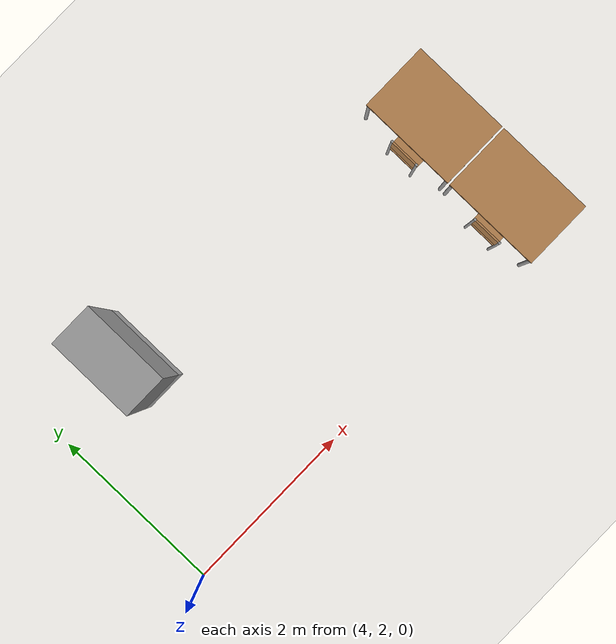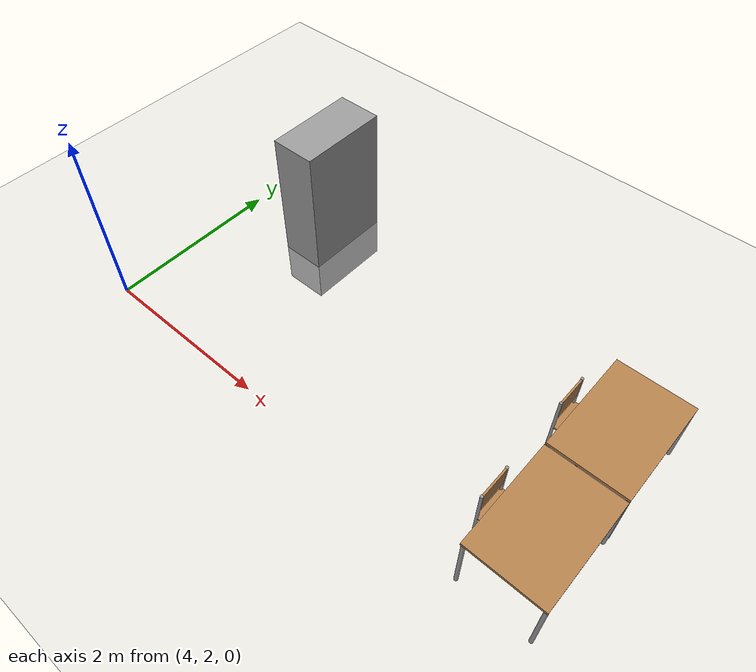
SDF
<sdf version="1.7">
 <world name="default">
  <model name="ground_plane">
   <static>1</static>
   <link name="link">
    <collision name="collision">
     <geometry><plane><normal>0 0 1</normal><size>100 100</size></plane></geometry>
     <surface>
      <contact><collide_bitmask>65535</collide_bitmask></contact>
      <friction><ode><mu>100</mu><mu2>50</mu2></ode></friction>
     </surface>
    </collision>
    <visual name="visual">
     <cast_shadows>0</cast_shadows>
     <geometry><plane><normal>0 0 1</normal><size>100 100</size></plane></geometry>
     <material>
      <script><uri>file://media/materials/scripts/gazebo.material</uri><name>Gazebo/Grey</name></script>
     </material>
    </visual>
   </link>
  </model>
  <model name="table_mod_clone_clone_1_clone">
   <link name="link">
    <inertial>
     <mass>1</mass>
     <inertia><ixx>1</ixx><ixy>0</ixy><ixz>0</ixz><iyy>1</iyy><iyz>0</iyz><izz>1</izz></inertia>
    </inertial>
    <visual name="visual1">
     <pose>0 0 0.87 0 -0 0</pose>
     <geometry><box><size>1.15 0.8 0.03</size></box></geometry>
     <material>
      <script><uri>file://media/materials/scripts/gazebo.material</uri><name>Gazebo/Wood</name></script>
      <shader type="pixel"><normal_map>__default__</normal_map></shader>
      <ambient>1 1 1 1</ambient>
      <diffuse>1 1 1 1</diffuse>
      <specular>0.2 0.2 0.2 1</specular>
      <emissive>0 0 0 1</emissive>
     </material>
    </visual>
    <visual name="back_right_leg">
     <pose>-0.55 -0.38 0.5 0 -0 0</pose>
     <geometry><cylinder><radius>0.02</radius><length>0.75</length></cylinder></geometry>
     <material>
      <script><uri>file://media/materials/scripts/gazebo.material</uri><name>Gazebo/Grey</name></script>
      <shader type="pixel"><normal_map>__default__</normal_map></shader>
      <ambient>0.3 0.3 0.3 1</ambient>
      <diffuse>0.7 0.7 0.7 1</diffuse>
      <specular>0.01 0.01 0.01 1</specular>
      <emissive>0 0 0 1</emissive>
     </material>
    </visual>
    <visual name="front_right_leg">
     <pose>0.55 -0.38 0.5 0 -0 0</pose>
     <geometry><cylinder><radius>0.02</radius><length>0.75</length></cylinder></geometry>
     <material>
      <script><uri>file://media/materials/scripts/gazebo.material</uri><name>Gazebo/Grey</name></script>
      <shader type="pixel"><normal_map>__default__</normal_map></shader>
      <ambient>0.3 0.3 0.3 1</ambient>
      <diffuse>0.7 0.7 0.7 1</diffuse>
      <specular>0.01 0.01 0.01 1</specular>
      <emissive>0 0 0 1</emissive>
     </material>
    </visual>
    <visual name="back_left_leg">
     <pose>-0.55 0.38 0.5 0 -0 0</pose>
     <geometry><cylinder><radius>0.02</radius><length>0.75</length></cylinder></geometry>
     <material>
      <script><uri>file://media/materials/scripts/gazebo.material</uri><name>Gazebo/Grey</name></script>
      <shader type="pixel"><normal_map>__default__</normal_map></shader>
      <ambient>0.3 0.3 0.3 1</ambient>
      <diffuse>0.7 0.7 0.7 1</diffuse>
      <specular>0.01 0.01 0.01 1</specular>
      <emissive>0 0 0 1</emissive>
     </material>
    </visual>
    <visual name="front_left_leg">
     <pose>0.55 0.38 0.5 0 -0 0</pose>
     <geometry><cylinder><radius>0.02</radius><length>0.75</length></cylinder></geometry>
     <material>
      <script><uri>file://media/materials/scripts/gazebo.material</uri><name>Gazebo/Grey</name></script>
      <shader type="pixel"><normal_map>__default__</normal_map></shader>
      <ambient>0.3 0.3 0.3 1</ambient>
      <diffuse>0.7 0.7 0.7 1</diffuse>
      <specular>0.01 0.01 0.01 1</specular>
      <emissive>0 0 0 1</emissive>
     </material>
    </visual>
    <collision name="surface">
     <pose>0 0 0.87 0 -0 0</pose>
     <geometry><box><size>1.15 0.8 0.03</size></box></geometry>
     <surface>
      <friction>
       <ode><mu>0.6</mu><mu2>0.6</mu2><fdir1>0 0 0</fdir1><slip1>0</slip1><slip2>0</slip2></ode>
       <torsional>
        <coefficient>1</coefficient>
        <patch_radius>0</patch_radius>
        <surface_radius>0</surface_radius>
        <use_patch_radius>1</use_patch_radius>
        <ode><slip>0</slip></ode>
       </torsional>
      </friction>
      <bounce><restitution_coefficient>0</restitution_coefficient><threshold>1e+06</threshold></bounce>
      <contact>
       <collide_without_contact>0</collide_without_contact>
       <collide_without_contact_bitmask>1</collide_without_contact_bitmask>
       <collide_bitmask>1</collide_bitmask>
       <ode>
        <soft_cfm>0</soft_cfm>
        <soft_erp>0.2</soft_erp>
        <kp>1e+13</kp>
        <kd>1</kd>
        <max_vel>0.01</max_vel>
        <min_depth>0</min_depth>
       </ode>
       <bullet>
        <split_impulse>1</split_impulse>
        <split_impulse_penetration_threshold>-0.01</split_impulse_penetration_threshold>
        <soft_cfm>0</soft_cfm>
        <soft_erp>0.2</soft_erp>
        <kp>1e+13</kp>
        <kd>1</kd>
       </bullet>
      </contact>
     </surface>
    </collision>
    <collision name="back_right_leg">
     <pose>-0.55 -0.38 0.5 0 -0 0</pose>
     <geometry><cylinder><radius>0.02</radius><length>0.75</length></cylinder></geometry>
     <surface>
      <friction>
       <ode><mu>1</mu><mu2>1</mu2><fdir1>0 0 0</fdir1><slip1>0</slip1><slip2>0</slip2></ode>
       <torsional>
        <coefficient>1</coefficient>
        <patch_radius>0</patch_radius>
        <surface_radius>0</surface_radius>
        <use_patch_radius>1</use_patch_radius>
        <ode><slip>0</slip></ode>
       </torsional>
      </friction>
      <bounce><restitution_coefficient>0</restitution_coefficient><threshold>1e+06</threshold></bounce>
      <contact>
       <collide_without_contact>0</collide_without_contact>
       <collide_without_contact_bitmask>1</collide_without_contact_bitmask>
       <collide_bitmask>1</collide_bitmask>
       <ode>
        <soft_cfm>0</soft_cfm>
        <soft_erp>0.2</soft_erp>
        <kp>1e+13</kp>
        <kd>1</kd>
        <max_vel>0.01</max_vel>
        <min_depth>0</min_depth>
       </ode>
       <bullet>
        <split_impulse>1</split_impulse>
        <split_impulse_penetration_threshold>-0.01</split_impulse_penetration_threshold>
        <soft_cfm>0</soft_cfm>
        <soft_erp>0.2</soft_erp>
        <kp>1e+13</kp>
        <kd>1</kd>
       </bullet>
      </contact>
     </surface>
    </collision>
    <collision name="back_left_leg">
     <pose>-0.55 0.38 0.5 0 -0 0</pose>
     <geometry><cylinder><radius>0.02</radius><length>0.75</length></cylinder></geometry>
     <surface>
      <friction>
       <ode><mu>1</mu><mu2>1</mu2><fdir1>0 0 0</fdir1><slip1>0</slip1><slip2>0</slip2></ode>
       <torsional>
        <coefficient>1</coefficient>
        <patch_radius>0</patch_radius>
        <surface_radius>0</surface_radius>
        <use_patch_radius>1</use_patch_radius>
        <ode><slip>0</slip></ode>
       </torsional>
      </friction>
      <bounce><restitution_coefficient>0</restitution_coefficient><threshold>1e+06</threshold></bounce>
      <contact>
       <collide_without_contact>0</collide_without_contact>
       <collide_without_contact_bitmask>1</collide_without_contact_bitmask>
       <collide_bitmask>1</collide_bitmask>
       <ode>
        <soft_cfm>0</soft_cfm>
        <soft_erp>0.2</soft_erp>
        <kp>1e+13</kp>
        <kd>1</kd>
        <max_vel>0.01</max_vel>
        <min_depth>0</min_depth>
       </ode>
       <bullet>
        <split_impulse>1</split_impulse>
        <split_impulse_penetration_threshold>-0.01</split_impulse_penetration_threshold>
        <soft_cfm>0</soft_cfm>
        <soft_erp>0.2</soft_erp>
        <kp>1e+13</kp>
        <kd>1</kd>
       </bullet>
      </contact>
     </surface>
    </collision>
    <collision name="front_left_leg">
     <pose>0.55 0.38 0.5 0 -0 0</pose>
     <geometry><cylinder><radius>0.02</radius><length>0.75</length></cylinder></geometry>
     <surface>
      <friction>
       <ode><mu>1</mu><mu2>1</mu2><fdir1>0 0 0</fdir1><slip1>0</slip1><slip2>0</slip2></ode>
       <torsional>
        <coefficient>1</coefficient>
        <patch_radius>0</patch_radius>
        <surface_radius>0</surface_radius>
        <use_patch_radius>1</use_patch_radius>
        <ode><slip>0</slip></ode>
       </torsional>
      </friction>
      <bounce><restitution_coefficient>0</restitution_coefficient><threshold>1e+06</threshold></bounce>
      <contact>
       <collide_without_contact>0</collide_without_contact>
       <collide_without_contact_bitmask>1</collide_without_contact_bitmask>
       <collide_bitmask>1</collide_bitmask>
       <ode>
        <soft_cfm>0</soft_cfm>
        <soft_erp>0.2</soft_erp>
        <kp>1e+13</kp>
        <kd>1</kd>
        <max_vel>0.01</max_vel>
        <min_depth>0</min_depth>
       </ode>
       <bullet>
        <split_impulse>1</split_impulse>
        <split_impulse_penetration_threshold>-0.01</split_impulse_penetration_threshold>
        <soft_cfm>0</soft_cfm>
        <soft_erp>0.2</soft_erp>
        <kp>1e+13</kp>
        <kd>1</kd>
       </bullet>
      </contact>
     </surface>
    </collision>
    <collision name="front_right_leg">
     <pose>0.55 -0.38 0.5 0 -0 0</pose>
     <geometry><cylinder><radius>0.02</radius><length>0.75</length></cylinder></geometry>
     <surface>
      <friction>
       <ode><mu>1</mu><mu2>1</mu2><fdir1>0 0 0</fdir1><slip1>0</slip1><slip2>0</slip2></ode>
       <torsional>
        <coefficient>1</coefficient>
        <patch_radius>0</patch_radius>
        <surface_radius>0</surface_radius>
        <use_patch_radius>1</use_patch_radius>
        <ode><slip>0</slip></ode>
       </torsional>
      </friction>
      <bounce><restitution_coefficient>0</restitution_coefficient><threshold>1e+06</threshold></bounce>
      <contact>
       <collide_without_contact>0</collide_without_contact>
       <collide_without_contact_bitmask>1</collide_without_contact_bitmask>
       <collide_bitmask>1</collide_bitmask>
       <ode>
        <soft_cfm>0</soft_cfm>
        <soft_erp>0.2</soft_erp>
        <kp>1e+13</kp>
        <kd>1</kd>
        <max_vel>0.01</max_vel>
        <min_depth>0</min_depth>
       </ode>
       <bullet>
        <split_impulse>1</split_impulse>
        <split_impulse_penetration_threshold>-0.01</split_impulse_penetration_threshold>
        <soft_cfm>0</soft_cfm>
        <soft_erp>0.2</soft_erp>
        <kp>1e+13</kp>
        <kd>1</kd>
       </bullet>
      </contact>
     </surface>
    </collision>
   </link>
   <static>1</static>
   <pose>9.09844 2.41322 -0.134214 0 0 -1.5708</pose>
  </model>
  <model name="table_mod_clone_clone_1_clone_clone">
   <link name="link">
    <inertial>
     <mass>1</mass>
     <inertia><ixx>1</ixx><ixy>0</ixy><ixz>0</ixz><iyy>1</iyy><iyz>0</iyz><izz>1</izz></inertia>
    </inertial>
    <visual name="visual1">
     <pose>0 0 0.87 0 -0 0</pose>
     <geometry><box><size>1.15 0.8 0.03</size></box></geometry>
     <material>
      <script><uri>file://media/materials/scripts/gazebo.material</uri><name>Gazebo/Wood</name></script>
      <shader type="pixel"><normal_map>__default__</normal_map></shader>
      <ambient>1 1 1 1</ambient>
      <diffuse>1 1 1 1</diffuse>
      <specular>0.2 0.2 0.2 1</specular>
      <emissive>0 0 0 1</emissive>
     </material>
    </visual>
    <visual name="back_right_leg">
     <pose>-0.55 -0.38 0.5 0 -0 0</pose>
     <geometry><cylinder><radius>0.02</radius><length>0.75</length></cylinder></geometry>
     <material>
      <script><uri>file://media/materials/scripts/gazebo.material</uri><name>Gazebo/Grey</name></script>
      <shader type="pixel"><normal_map>__default__</normal_map></shader>
      <ambient>0.3 0.3 0.3 1</ambient>
      <diffuse>0.7 0.7 0.7 1</diffuse>
      <specular>0.01 0.01 0.01 1</specular>
      <emissive>0 0 0 1</emissive>
     </material>
    </visual>
    <visual name="front_right_leg">
     <pose>0.55 -0.38 0.5 0 -0 0</pose>
     <geometry><cylinder><radius>0.02</radius><length>0.75</length></cylinder></geometry>
     <material>
      <script><uri>file://media/materials/scripts/gazebo.material</uri><name>Gazebo/Grey</name></script>
      <shader type="pixel"><normal_map>__default__</normal_map></shader>
      <ambient>0.3 0.3 0.3 1</ambient>
      <diffuse>0.7 0.7 0.7 1</diffuse>
      <specular>0.01 0.01 0.01 1</specular>
      <emissive>0 0 0 1</emissive>
     </material>
    </visual>
    <visual name="back_left_leg">
     <pose>-0.55 0.38 0.5 0 -0 0</pose>
     <geometry><cylinder><radius>0.02</radius><length>0.75</length></cylinder></geometry>
     <material>
      <script><uri>file://media/materials/scripts/gazebo.material</uri><name>Gazebo/Grey</name></script>
      <shader type="pixel"><normal_map>__default__</normal_map></shader>
      <ambient>0.3 0.3 0.3 1</ambient>
      <diffuse>0.7 0.7 0.7 1</diffuse>
      <specular>0.01 0.01 0.01 1</specular>
      <emissive>0 0 0 1</emissive>
     </material>
    </visual>
    <visual name="front_left_leg">
     <pose>0.55 0.38 0.5 0 -0 0</pose>
     <geometry><cylinder><radius>0.02</radius><length>0.75</length></cylinder></geometry>
     <material>
      <script><uri>file://media/materials/scripts/gazebo.material</uri><name>Gazebo/Grey</name></script>
      <shader type="pixel"><normal_map>__default__</normal_map></shader>
      <ambient>0.3 0.3 0.3 1</ambient>
      <diffuse>0.7 0.7 0.7 1</diffuse>
      <specular>0.01 0.01 0.01 1</specular>
      <emissive>0 0 0 1</emissive>
     </material>
    </visual>
    <collision name="surface">
     <pose>0 0 0.87 0 -0 0</pose>
     <geometry><box><size>1.15 0.8 0.03</size></box></geometry>
     <surface>
      <friction>
       <ode><mu>0.6</mu><mu2>0.6</mu2><fdir1>0 0 0</fdir1><slip1>0</slip1><slip2>0</slip2></ode>
       <torsional>
        <coefficient>1</coefficient>
        <patch_radius>0</patch_radius>
        <surface_radius>0</surface_radius>
        <use_patch_radius>1</use_patch_radius>
        <ode><slip>0</slip></ode>
       </torsional>
      </friction>
      <bounce><restitution_coefficient>0</restitution_coefficient><threshold>1e+06</threshold></bounce>
      <contact>
       <collide_without_contact>0</collide_without_contact>
       <collide_without_contact_bitmask>1</collide_without_contact_bitmask>
       <collide_bitmask>1</collide_bitmask>
       <ode>
        <soft_cfm>0</soft_cfm>
        <soft_erp>0.2</soft_erp>
        <kp>1e+13</kp>
        <kd>1</kd>
        <max_vel>0.01</max_vel>
        <min_depth>0</min_depth>
       </ode>
       <bullet>
        <split_impulse>1</split_impulse>
        <split_impulse_penetration_threshold>-0.01</split_impulse_penetration_threshold>
        <soft_cfm>0</soft_cfm>
        <soft_erp>0.2</soft_erp>
        <kp>1e+13</kp>
        <kd>1</kd>
       </bullet>
      </contact>
     </surface>
    </collision>
    <collision name="back_right_leg">
     <pose>-0.55 -0.38 0.5 0 -0 0</pose>
     <geometry><cylinder><radius>0.02</radius><length>0.75</length></cylinder></geometry>
     <surface>
      <friction>
       <ode><mu>1</mu><mu2>1</mu2><fdir1>0 0 0</fdir1><slip1>0</slip1><slip2>0</slip2></ode>
       <torsional>
        <coefficient>1</coefficient>
        <patch_radius>0</patch_radius>
        <surface_radius>0</surface_radius>
        <use_patch_radius>1</use_patch_radius>
        <ode><slip>0</slip></ode>
       </torsional>
      </friction>
      <bounce><restitution_coefficient>0</restitution_coefficient><threshold>1e+06</threshold></bounce>
      <contact>
       <collide_without_contact>0</collide_without_contact>
       <collide_without_contact_bitmask>1</collide_without_contact_bitmask>
       <collide_bitmask>1</collide_bitmask>
       <ode>
        <soft_cfm>0</soft_cfm>
        <soft_erp>0.2</soft_erp>
        <kp>1e+13</kp>
        <kd>1</kd>
        <max_vel>0.01</max_vel>
        <min_depth>0</min_depth>
       </ode>
       <bullet>
        <split_impulse>1</split_impulse>
        <split_impulse_penetration_threshold>-0.01</split_impulse_penetration_threshold>
        <soft_cfm>0</soft_cfm>
        <soft_erp>0.2</soft_erp>
        <kp>1e+13</kp>
        <kd>1</kd>
       </bullet>
      </contact>
     </surface>
    </collision>
    <collision name="back_left_leg">
     <pose>-0.55 0.38 0.5 0 -0 0</pose>
     <geometry><cylinder><radius>0.02</radius><length>0.75</length></cylinder></geometry>
     <surface>
      <friction>
       <ode><mu>1</mu><mu2>1</mu2><fdir1>0 0 0</fdir1><slip1>0</slip1><slip2>0</slip2></ode>
       <torsional>
        <coefficient>1</coefficient>
        <patch_radius>0</patch_radius>
        <surface_radius>0</surface_radius>
        <use_patch_radius>1</use_patch_radius>
        <ode><slip>0</slip></ode>
       </torsional>
      </friction>
      <bounce><restitution_coefficient>0</restitution_coefficient><threshold>1e+06</threshold></bounce>
      <contact>
       <collide_without_contact>0</collide_without_contact>
       <collide_without_contact_bitmask>1</collide_without_contact_bitmask>
       <collide_bitmask>1</collide_bitmask>
       <ode>
        <soft_cfm>0</soft_cfm>
        <soft_erp>0.2</soft_erp>
        <kp>1e+13</kp>
        <kd>1</kd>
        <max_vel>0.01</max_vel>
        <min_depth>0</min_depth>
       </ode>
       <bullet>
        <split_impulse>1</split_impulse>
        <split_impulse_penetration_threshold>-0.01</split_impulse_penetration_threshold>
        <soft_cfm>0</soft_cfm>
        <soft_erp>0.2</soft_erp>
        <kp>1e+13</kp>
        <kd>1</kd>
       </bullet>
      </contact>
     </surface>
    </collision>
    <collision name="front_left_leg">
     <pose>0.55 0.38 0.5 0 -0 0</pose>
     <geometry><cylinder><radius>0.02</radius><length>0.75</length></cylinder></geometry>
     <surface>
      <friction>
       <ode><mu>1</mu><mu2>1</mu2><fdir1>0 0 0</fdir1><slip1>0</slip1><slip2>0</slip2></ode>
       <torsional>
        <coefficient>1</coefficient>
        <patch_radius>0</patch_radius>
        <surface_radius>0</surface_radius>
        <use_patch_radius>1</use_patch_radius>
        <ode><slip>0</slip></ode>
       </torsional>
      </friction>
      <bounce><restitution_coefficient>0</restitution_coefficient><threshold>1e+06</threshold></bounce>
      <contact>
       <collide_without_contact>0</collide_without_contact>
       <collide_without_contact_bitmask>1</collide_without_contact_bitmask>
       <collide_bitmask>1</collide_bitmask>
       <ode>
        <soft_cfm>0</soft_cfm>
        <soft_erp>0.2</soft_erp>
        <kp>1e+13</kp>
        <kd>1</kd>
        <max_vel>0.01</max_vel>
        <min_depth>0</min_depth>
       </ode>
       <bullet>
        <split_impulse>1</split_impulse>
        <split_impulse_penetration_threshold>-0.01</split_impulse_penetration_threshold>
        <soft_cfm>0</soft_cfm>
        <soft_erp>0.2</soft_erp>
        <kp>1e+13</kp>
        <kd>1</kd>
       </bullet>
      </contact>
     </surface>
    </collision>
    <collision name="front_right_leg">
     <pose>0.55 -0.38 0.5 0 -0 0</pose>
     <geometry><cylinder><radius>0.02</radius><length>0.75</length></cylinder></geometry>
     <surface>
      <friction>
       <ode><mu>1</mu><mu2>1</mu2><fdir1>0 0 0</fdir1><slip1>0</slip1><slip2>0</slip2></ode>
       <torsional>
        <coefficient>1</coefficient>
        <patch_radius>0</patch_radius>
        <surface_radius>0</surface_radius>
        <use_patch_radius>1</use_patch_radius>
        <ode><slip>0</slip></ode>
       </torsional>
      </friction>
      <bounce><restitution_coefficient>0</restitution_coefficient><threshold>1e+06</threshold></bounce>
      <contact>
       <collide_without_contact>0</collide_without_contact>
       <collide_without_contact_bitmask>1</collide_without_contact_bitmask>
       <collide_bitmask>1</collide_bitmask>
       <ode>
        <soft_cfm>0</soft_cfm>
        <soft_erp>0.2</soft_erp>
        <kp>1e+13</kp>
        <kd>1</kd>
        <max_vel>0.01</max_vel>
        <min_depth>0</min_depth>
       </ode>
       <bullet>
        <split_impulse>1</split_impulse>
        <split_impulse_penetration_threshold>-0.01</split_impulse_penetration_threshold>
        <soft_cfm>0</soft_cfm>
        <soft_erp>0.2</soft_erp>
        <kp>1e+13</kp>
        <kd>1</kd>
       </bullet>
      </contact>
     </surface>
    </collision>
   </link>
   <static>1</static>
   <pose>9.09874 3.58636 -0.134214 0 0 -1.5708</pose>
  </model>
  <model name="chair_mod_0_clone_2_clone_1_clone_1_clone">
   <link name="link">
    <inertial>
     <mass>1</mass>
     <inertia><ixx>1</ixx><ixy>0</ixy><ixz>0</ixz><iyy>1</iyy><iyz>0</iyz><izz>1</izz></inertia>
    </inertial>
    <visual name="back_right_leg">
     <pose>-0.17 -0.17 0.42 0 -0 0</pose>
     <geometry><cylinder><radius>0.015</radius><length>0.84</length></cylinder></geometry>
     <material>
      <script><uri>file://media/materials/scripts/gazebo.material</uri><name>Gazebo/Grey</name></script>
      <shader type="pixel"><normal_map>__default__</normal_map></shader>
      <ambient>0.3 0.3 0.3 1</ambient>
      <diffuse>0.7 0.7 0.7 1</diffuse>
      <specular>0.01 0.01 0.01 1</specular>
      <emissive>0 0 0 1</emissive>
     </material>
    </visual>
    <visual name="back_left_leg">
     <pose>-0.15 0.15 0.23 0 -0 0</pose>
     <geometry><cylinder><radius>0.015</radius><length>0.46</length></cylinder></geometry>
     <material>
      <script><uri>file://media/materials/scripts/gazebo.material</uri><name>Gazebo/Grey</name></script>
      <shader type="pixel"><normal_map>__default__</normal_map></shader>
      <ambient>0.3 0.3 0.3 1</ambient>
      <diffuse>0.7 0.7 0.7 1</diffuse>
      <specular>0.01 0.01 0.01 1</specular>
      <emissive>0 0 0 1</emissive>
     </material>
    </visual>
    <visual name="visual1">
     <pose>0 0 0.46 0 -0 0</pose>
     <geometry><box><size>0.36 0.36 0.02</size></box></geometry>
     <material>
      <script><uri>file://media/materials/scripts/gazebo.material</uri><name>Gazebo/Wood</name></script>
      <shader type="pixel"><normal_map>__default__</normal_map></shader>
      <ambient>1 1 1 1</ambient>
      <diffuse>1 1 1 1</diffuse>
      <specular>0.2 0.2 0.2 1</specular>
      <emissive>0 0 0 1</emissive>
     </material>
    </visual>
    <visual name="ModelPreview_1::link::visual_5">
     <pose>0 -0.17 0.705 1.56 -0 0</pose>
     <geometry><box><size>0.36 0.26 0.02</size></box></geometry>
     <material>
      <script><uri>file://media/materials/scripts/gazebo.material</uri><name>Gazebo/Wood</name></script>
      <shader type="pixel"><normal_map>__default__</normal_map></shader>
      <ambient>1 1 1 1</ambient>
      <diffuse>1 1 1 1</diffuse>
      <specular>0.2 0.2 0.2 1</specular>
      <emissive>0 0 0 1</emissive>
     </material>
    </visual>
    <visual name="front_left_leg">
     <pose>0.15 0.15 0.23 0 -0 0</pose>
     <geometry><cylinder><radius>0.015</radius><length>0.46</length></cylinder></geometry>
     <material>
      <script><uri>file://media/materials/scripts/gazebo.material</uri><name>Gazebo/Grey</name></script>
      <shader type="pixel"><normal_map>__default__</normal_map></shader>
      <ambient>0.3 0.3 0.3 1</ambient>
      <diffuse>0.7 0.7 0.7 1</diffuse>
      <specular>0.01 0.01 0.01 1</specular>
      <emissive>0 0 0 1</emissive>
     </material>
    </visual>
    <visual name="front_right_leg">
     <pose>0.17 -0.17 0.42 0 -0 0</pose>
     <geometry><cylinder><radius>0.015</radius><length>0.84</length></cylinder></geometry>
     <material>
      <script><uri>file://media/materials/scripts/gazebo.material</uri><name>Gazebo/Grey</name></script>
      <shader type="pixel"><normal_map>__default__</normal_map></shader>
      <ambient>0.3 0.3 0.3 1</ambient>
      <diffuse>0.7 0.7 0.7 1</diffuse>
      <specular>0.01 0.01 0.01 1</specular>
      <emissive>0 0 0 1</emissive>
     </material>
    </visual>
    <collision name="front_right_leg">
     <pose>0.17 -0.17 0.42 0 -0 0</pose>
     <geometry><cylinder><radius>0.015</radius><length>0.84</length></cylinder></geometry>
     <surface>
      <friction>
       <ode><mu>1</mu><mu2>1</mu2><fdir1>0 0 0</fdir1><slip1>0</slip1><slip2>0</slip2></ode>
       <torsional>
        <coefficient>1</coefficient>
        <patch_radius>0</patch_radius>
        <surface_radius>0</surface_radius>
        <use_patch_radius>1</use_patch_radius>
        <ode><slip>0</slip></ode>
       </torsional>
      </friction>
      <bounce><restitution_coefficient>0</restitution_coefficient><threshold>1e+06</threshold></bounce>
      <contact>
       <collide_without_contact>0</collide_without_contact>
       <collide_without_contact_bitmask>1</collide_without_contact_bitmask>
       <collide_bitmask>1</collide_bitmask>
       <ode>
        <soft_cfm>0</soft_cfm>
        <soft_erp>0.2</soft_erp>
        <kp>1e+13</kp>
        <kd>1</kd>
        <max_vel>0.01</max_vel>
        <min_depth>0</min_depth>
       </ode>
       <bullet>
        <split_impulse>1</split_impulse>
        <split_impulse_penetration_threshold>-0.01</split_impulse_penetration_threshold>
        <soft_cfm>0</soft_cfm>
        <soft_erp>0.2</soft_erp>
        <kp>1e+13</kp>
        <kd>1</kd>
       </bullet>
      </contact>
     </surface>
    </collision>
    <collision name="back_right_leg">
     <pose>-0.17 -0.17 0.42 0 -0 0</pose>
     <geometry><cylinder><radius>0.015</radius><length>0.84</length></cylinder></geometry>
     <surface>
      <friction>
       <ode><mu>1</mu><mu2>1</mu2><fdir1>0 0 0</fdir1><slip1>0</slip1><slip2>0</slip2></ode>
       <torsional>
        <coefficient>1</coefficient>
        <patch_radius>0</patch_radius>
        <surface_radius>0</surface_radius>
        <use_patch_radius>1</use_patch_radius>
        <ode><slip>0</slip></ode>
       </torsional>
      </friction>
      <bounce><restitution_coefficient>0</restitution_coefficient><threshold>1e+06</threshold></bounce>
      <contact>
       <collide_without_contact>0</collide_without_contact>
       <collide_without_contact_bitmask>1</collide_without_contact_bitmask>
       <collide_bitmask>1</collide_bitmask>
       <ode>
        <soft_cfm>0</soft_cfm>
        <soft_erp>0.2</soft_erp>
        <kp>1e+13</kp>
        <kd>1</kd>
        <max_vel>0.01</max_vel>
        <min_depth>0</min_depth>
       </ode>
       <bullet>
        <split_impulse>1</split_impulse>
        <split_impulse_penetration_threshold>-0.01</split_impulse_penetration_threshold>
        <soft_cfm>0</soft_cfm>
        <soft_erp>0.2</soft_erp>
        <kp>1e+13</kp>
        <kd>1</kd>
       </bullet>
      </contact>
     </surface>
    </collision>
    <collision name="back_left_leg">
     <pose>-0.15 0.15 0.23 0 -0 0</pose>
     <geometry><cylinder><radius>0.015</radius><length>0.46</length></cylinder></geometry>
     <surface>
      <friction>
       <ode><mu>1</mu><mu2>1</mu2><fdir1>0 0 0</fdir1><slip1>0</slip1><slip2>0</slip2></ode>
       <torsional>
        <coefficient>1</coefficient>
        <patch_radius>0</patch_radius>
        <surface_radius>0</surface_radius>
        <use_patch_radius>1</use_patch_radius>
        <ode><slip>0</slip></ode>
       </torsional>
      </friction>
      <bounce><restitution_coefficient>0</restitution_coefficient><threshold>1e+06</threshold></bounce>
      <contact>
       <collide_without_contact>0</collide_without_contact>
       <collide_without_contact_bitmask>1</collide_without_contact_bitmask>
       <collide_bitmask>1</collide_bitmask>
       <ode>
        <soft_cfm>0</soft_cfm>
        <soft_erp>0.2</soft_erp>
        <kp>1e+13</kp>
        <kd>1</kd>
        <max_vel>0.01</max_vel>
        <min_depth>0</min_depth>
       </ode>
       <bullet>
        <split_impulse>1</split_impulse>
        <split_impulse_penetration_threshold>-0.01</split_impulse_penetration_threshold>
        <soft_cfm>0</soft_cfm>
        <soft_erp>0.2</soft_erp>
        <kp>1e+13</kp>
        <kd>1</kd>
       </bullet>
      </contact>
     </surface>
    </collision>
    <collision name="collision_6">
     <pose>0 -0.17 0.705 1.56 -0 0</pose>
     <geometry><box><size>0.36 0.26 0.03</size></box></geometry>
     <surface>
      <friction>
       <ode><mu>1</mu><mu2>1</mu2><fdir1>0 0 0</fdir1><slip1>0</slip1><slip2>0</slip2></ode>
       <torsional>
        <coefficient>1</coefficient>
        <patch_radius>0</patch_radius>
        <surface_radius>0</surface_radius>
        <use_patch_radius>1</use_patch_radius>
        <ode><slip>0</slip></ode>
       </torsional>
      </friction>
      <bounce><restitution_coefficient>0</restitution_coefficient><threshold>1e+06</threshold></bounce>
      <contact>
       <collide_without_contact>0</collide_without_contact>
       <collide_without_contact_bitmask>1</collide_without_contact_bitmask>
       <collide_bitmask>1</collide_bitmask>
       <ode>
        <soft_cfm>0</soft_cfm>
        <soft_erp>0.2</soft_erp>
        <kp>1e+13</kp>
        <kd>1</kd>
        <max_vel>0.01</max_vel>
        <min_depth>0</min_depth>
       </ode>
       <bullet>
        <split_impulse>1</split_impulse>
        <split_impulse_penetration_threshold>-0.01</split_impulse_penetration_threshold>
        <soft_cfm>0</soft_cfm>
        <soft_erp>0.2</soft_erp>
        <kp>1e+13</kp>
        <kd>1</kd>
       </bullet>
      </contact>
     </surface>
    </collision>
    <collision name="surface">
     <pose>0 0 0.46 0 -0 0</pose>
     <geometry><box><size>0.36 0.36 0.03</size></box></geometry>
     <surface>
      <friction>
       <ode><mu>0.6</mu><mu2>0.6</mu2><fdir1>0 0 0</fdir1><slip1>0</slip1><slip2>0</slip2></ode>
       <torsional>
        <coefficient>1</coefficient>
        <patch_radius>0</patch_radius>
        <surface_radius>0</surface_radius>
        <use_patch_radius>1</use_patch_radius>
        <ode><slip>0</slip></ode>
       </torsional>
      </friction>
      <bounce><restitution_coefficient>0</restitution_coefficient><threshold>1e+06</threshold></bounce>
      <contact>
       <collide_without_contact>0</collide_without_contact>
       <collide_without_contact_bitmask>1</collide_without_contact_bitmask>
       <collide_bitmask>1</collide_bitmask>
       <ode>
        <soft_cfm>0</soft_cfm>
        <soft_erp>0.2</soft_erp>
        <kp>1e+13</kp>
        <kd>1</kd>
        <max_vel>0.01</max_vel>
        <min_depth>0</min_depth>
       </ode>
       <bullet>
        <split_impulse>1</split_impulse>
        <split_impulse_penetration_threshold>-0.01</split_impulse_penetration_threshold>
        <soft_cfm>0</soft_cfm>
        <soft_erp>0.2</soft_erp>
        <kp>1e+13</kp>
        <kd>1</kd>
       </bullet>
      </contact>
     </surface>
    </collision>
    <collision name="front_left_leg">
     <pose>0.15 0.15 0.23 0 -0 0</pose>
     <geometry><cylinder><radius>0.015</radius><length>0.46</length></cylinder></geometry>
     <surface>
      <friction>
       <ode><mu>1</mu><mu2>1</mu2><fdir1>0 0 0</fdir1><slip1>0</slip1><slip2>0</slip2></ode>
       <torsional>
        <coefficient>1</coefficient>
        <patch_radius>0</patch_radius>
        <surface_radius>0</surface_radius>
        <use_patch_radius>1</use_patch_radius>
        <ode><slip>0</slip></ode>
       </torsional>
      </friction>
      <bounce><restitution_coefficient>0</restitution_coefficient><threshold>1e+06</threshold></bounce>
      <contact>
       <collide_without_contact>0</collide_without_contact>
       <collide_without_contact_bitmask>1</collide_without_contact_bitmask>
       <collide_bitmask>1</collide_bitmask>
       <ode>
        <soft_cfm>0</soft_cfm>
        <soft_erp>0.2</soft_erp>
        <kp>1e+13</kp>
        <kd>1</kd>
        <max_vel>0.01</max_vel>
        <min_depth>0</min_depth>
       </ode>
       <bullet>
        <split_impulse>1</split_impulse>
        <split_impulse_penetration_threshold>-0.01</split_impulse_penetration_threshold>
        <soft_cfm>0</soft_cfm>
        <soft_erp>0.2</soft_erp>
        <kp>1e+13</kp>
        <kd>1</kd>
       </bullet>
      </contact>
     </surface>
    </collision>
   </link>
   <static>1</static>
   <pose>8.78019 2.38838 0 0 0 -1.57079</pose>
  </model>
  <model name="chair_mod_0_clone_2_clone_1_clone_1_clone_0">
   <link name="link">
    <inertial>
     <mass>1</mass>
     <inertia><ixx>1</ixx><ixy>0</ixy><ixz>0</ixz><iyy>1</iyy><iyz>0</iyz><izz>1</izz></inertia>
    </inertial>
    <visual name="back_right_leg">
     <pose>-0.17 -0.17 0.42 0 -0 0</pose>
     <geometry><cylinder><radius>0.015</radius><length>0.84</length></cylinder></geometry>
     <material>
      <script><uri>file://media/materials/scripts/gazebo.material</uri><name>Gazebo/Grey</name></script>
      <shader type="pixel"><normal_map>__default__</normal_map></shader>
      <ambient>0.3 0.3 0.3 1</ambient>
      <diffuse>0.7 0.7 0.7 1</diffuse>
      <specular>0.01 0.01 0.01 1</specular>
      <emissive>0 0 0 1</emissive>
     </material>
    </visual>
    <visual name="back_left_leg">
     <pose>-0.15 0.15 0.23 0 -0 0</pose>
     <geometry><cylinder><radius>0.015</radius><length>0.46</length></cylinder></geometry>
     <material>
      <script><uri>file://media/materials/scripts/gazebo.material</uri><name>Gazebo/Grey</name></script>
      <shader type="pixel"><normal_map>__default__</normal_map></shader>
      <ambient>0.3 0.3 0.3 1</ambient>
      <diffuse>0.7 0.7 0.7 1</diffuse>
      <specular>0.01 0.01 0.01 1</specular>
      <emissive>0 0 0 1</emissive>
     </material>
    </visual>
    <visual name="visual1">
     <pose>0 0 0.46 0 -0 0</pose>
     <geometry><box><size>0.36 0.36 0.02</size></box></geometry>
     <material>
      <script><uri>file://media/materials/scripts/gazebo.material</uri><name>Gazebo/Wood</name></script>
      <shader type="pixel"><normal_map>__default__</normal_map></shader>
      <ambient>1 1 1 1</ambient>
      <diffuse>1 1 1 1</diffuse>
      <specular>0.2 0.2 0.2 1</specular>
      <emissive>0 0 0 1</emissive>
     </material>
    </visual>
    <visual name="ModelPreview_1::link::visual_5">
     <pose>0 -0.17 0.705 1.56 -0 0</pose>
     <geometry><box><size>0.36 0.26 0.02</size></box></geometry>
     <material>
      <script><uri>file://media/materials/scripts/gazebo.material</uri><name>Gazebo/Wood</name></script>
      <shader type="pixel"><normal_map>__default__</normal_map></shader>
      <ambient>1 1 1 1</ambient>
      <diffuse>1 1 1 1</diffuse>
      <specular>0.2 0.2 0.2 1</specular>
      <emissive>0 0 0 1</emissive>
     </material>
    </visual>
    <visual name="front_left_leg">
     <pose>0.15 0.15 0.23 0 -0 0</pose>
     <geometry><cylinder><radius>0.015</radius><length>0.46</length></cylinder></geometry>
     <material>
      <script><uri>file://media/materials/scripts/gazebo.material</uri><name>Gazebo/Grey</name></script>
      <shader type="pixel"><normal_map>__default__</normal_map></shader>
      <ambient>0.3 0.3 0.3 1</ambient>
      <diffuse>0.7 0.7 0.7 1</diffuse>
      <specular>0.01 0.01 0.01 1</specular>
      <emissive>0 0 0 1</emissive>
     </material>
    </visual>
    <visual name="front_right_leg">
     <pose>0.17 -0.17 0.42 0 -0 0</pose>
     <geometry><cylinder><radius>0.015</radius><length>0.84</length></cylinder></geometry>
     <material>
      <script><uri>file://media/materials/scripts/gazebo.material</uri><name>Gazebo/Grey</name></script>
      <shader type="pixel"><normal_map>__default__</normal_map></shader>
      <ambient>0.3 0.3 0.3 1</ambient>
      <diffuse>0.7 0.7 0.7 1</diffuse>
      <specular>0.01 0.01 0.01 1</specular>
      <emissive>0 0 0 1</emissive>
     </material>
    </visual>
    <collision name="front_right_leg">
     <pose>0.17 -0.17 0.42 0 -0 0</pose>
     <geometry><cylinder><radius>0.015</radius><length>0.84</length></cylinder></geometry>
     <surface>
      <friction>
       <ode><mu>1</mu><mu2>1</mu2><fdir1>0 0 0</fdir1><slip1>0</slip1><slip2>0</slip2></ode>
       <torsional>
        <coefficient>1</coefficient>
        <patch_radius>0</patch_radius>
        <surface_radius>0</surface_radius>
        <use_patch_radius>1</use_patch_radius>
        <ode><slip>0</slip></ode>
       </torsional>
      </friction>
      <bounce><restitution_coefficient>0</restitution_coefficient><threshold>1e+06</threshold></bounce>
      <contact>
       <collide_without_contact>0</collide_without_contact>
       <collide_without_contact_bitmask>1</collide_without_contact_bitmask>
       <collide_bitmask>1</collide_bitmask>
       <ode>
        <soft_cfm>0</soft_cfm>
        <soft_erp>0.2</soft_erp>
        <kp>1e+13</kp>
        <kd>1</kd>
        <max_vel>0.01</max_vel>
        <min_depth>0</min_depth>
       </ode>
       <bullet>
        <split_impulse>1</split_impulse>
        <split_impulse_penetration_threshold>-0.01</split_impulse_penetration_threshold>
        <soft_cfm>0</soft_cfm>
        <soft_erp>0.2</soft_erp>
        <kp>1e+13</kp>
        <kd>1</kd>
       </bullet>
      </contact>
     </surface>
    </collision>
    <collision name="back_right_leg">
     <pose>-0.17 -0.17 0.42 0 -0 0</pose>
     <geometry><cylinder><radius>0.015</radius><length>0.84</length></cylinder></geometry>
     <surface>
      <friction>
       <ode><mu>1</mu><mu2>1</mu2><fdir1>0 0 0</fdir1><slip1>0</slip1><slip2>0</slip2></ode>
       <torsional>
        <coefficient>1</coefficient>
        <patch_radius>0</patch_radius>
        <surface_radius>0</surface_radius>
        <use_patch_radius>1</use_patch_radius>
        <ode><slip>0</slip></ode>
       </torsional>
      </friction>
      <bounce><restitution_coefficient>0</restitution_coefficient><threshold>1e+06</threshold></bounce>
      <contact>
       <collide_without_contact>0</collide_without_contact>
       <collide_without_contact_bitmask>1</collide_without_contact_bitmask>
       <collide_bitmask>1</collide_bitmask>
       <ode>
        <soft_cfm>0</soft_cfm>
        <soft_erp>0.2</soft_erp>
        <kp>1e+13</kp>
        <kd>1</kd>
        <max_vel>0.01</max_vel>
        <min_depth>0</min_depth>
       </ode>
       <bullet>
        <split_impulse>1</split_impulse>
        <split_impulse_penetration_threshold>-0.01</split_impulse_penetration_threshold>
        <soft_cfm>0</soft_cfm>
        <soft_erp>0.2</soft_erp>
        <kp>1e+13</kp>
        <kd>1</kd>
       </bullet>
      </contact>
     </surface>
    </collision>
    <collision name="back_left_leg">
     <pose>-0.15 0.15 0.23 0 -0 0</pose>
     <geometry><cylinder><radius>0.015</radius><length>0.46</length></cylinder></geometry>
     <surface>
      <friction>
       <ode><mu>1</mu><mu2>1</mu2><fdir1>0 0 0</fdir1><slip1>0</slip1><slip2>0</slip2></ode>
       <torsional>
        <coefficient>1</coefficient>
        <patch_radius>0</patch_radius>
        <surface_radius>0</surface_radius>
        <use_patch_radius>1</use_patch_radius>
        <ode><slip>0</slip></ode>
       </torsional>
      </friction>
      <bounce><restitution_coefficient>0</restitution_coefficient><threshold>1e+06</threshold></bounce>
      <contact>
       <collide_without_contact>0</collide_without_contact>
       <collide_without_contact_bitmask>1</collide_without_contact_bitmask>
       <collide_bitmask>1</collide_bitmask>
       <ode>
        <soft_cfm>0</soft_cfm>
        <soft_erp>0.2</soft_erp>
        <kp>1e+13</kp>
        <kd>1</kd>
        <max_vel>0.01</max_vel>
        <min_depth>0</min_depth>
       </ode>
       <bullet>
        <split_impulse>1</split_impulse>
        <split_impulse_penetration_threshold>-0.01</split_impulse_penetration_threshold>
        <soft_cfm>0</soft_cfm>
        <soft_erp>0.2</soft_erp>
        <kp>1e+13</kp>
        <kd>1</kd>
       </bullet>
      </contact>
     </surface>
    </collision>
    <collision name="collision_6">
     <pose>0 -0.17 0.705 1.56 -0 0</pose>
     <geometry><box><size>0.36 0.26 0.03</size></box></geometry>
     <surface>
      <friction>
       <ode><mu>1</mu><mu2>1</mu2><fdir1>0 0 0</fdir1><slip1>0</slip1><slip2>0</slip2></ode>
       <torsional>
        <coefficient>1</coefficient>
        <patch_radius>0</patch_radius>
        <surface_radius>0</surface_radius>
        <use_patch_radius>1</use_patch_radius>
        <ode><slip>0</slip></ode>
       </torsional>
      </friction>
      <bounce><restitution_coefficient>0</restitution_coefficient><threshold>1e+06</threshold></bounce>
      <contact>
       <collide_without_contact>0</collide_without_contact>
       <collide_without_contact_bitmask>1</collide_without_contact_bitmask>
       <collide_bitmask>1</collide_bitmask>
       <ode>
        <soft_cfm>0</soft_cfm>
        <soft_erp>0.2</soft_erp>
        <kp>1e+13</kp>
        <kd>1</kd>
        <max_vel>0.01</max_vel>
        <min_depth>0</min_depth>
       </ode>
       <bullet>
        <split_impulse>1</split_impulse>
        <split_impulse_penetration_threshold>-0.01</split_impulse_penetration_threshold>
        <soft_cfm>0</soft_cfm>
        <soft_erp>0.2</soft_erp>
        <kp>1e+13</kp>
        <kd>1</kd>
       </bullet>
      </contact>
     </surface>
    </collision>
    <collision name="surface">
     <pose>0 0 0.46 0 -0 0</pose>
     <geometry><box><size>0.36 0.36 0.03</size></box></geometry>
     <surface>
      <friction>
       <ode><mu>0.6</mu><mu2>0.6</mu2><fdir1>0 0 0</fdir1><slip1>0</slip1><slip2>0</slip2></ode>
       <torsional>
        <coefficient>1</coefficient>
        <patch_radius>0</patch_radius>
        <surface_radius>0</surface_radius>
        <use_patch_radius>1</use_patch_radius>
        <ode><slip>0</slip></ode>
       </torsional>
      </friction>
      <bounce><restitution_coefficient>0</restitution_coefficient><threshold>1e+06</threshold></bounce>
      <contact>
       <collide_without_contact>0</collide_without_contact>
       <collide_without_contact_bitmask>1</collide_without_contact_bitmask>
       <collide_bitmask>1</collide_bitmask>
       <ode>
        <soft_cfm>0</soft_cfm>
        <soft_erp>0.2</soft_erp>
        <kp>1e+13</kp>
        <kd>1</kd>
        <max_vel>0.01</max_vel>
        <min_depth>0</min_depth>
       </ode>
       <bullet>
        <split_impulse>1</split_impulse>
        <split_impulse_penetration_threshold>-0.01</split_impulse_penetration_threshold>
        <soft_cfm>0</soft_cfm>
        <soft_erp>0.2</soft_erp>
        <kp>1e+13</kp>
        <kd>1</kd>
       </bullet>
      </contact>
     </surface>
    </collision>
    <collision name="front_left_leg">
     <pose>0.15 0.15 0.23 0 -0 0</pose>
     <geometry><cylinder><radius>0.015</radius><length>0.46</length></cylinder></geometry>
     <surface>
      <friction>
       <ode><mu>1</mu><mu2>1</mu2><fdir1>0 0 0</fdir1><slip1>0</slip1><slip2>0</slip2></ode>
       <torsional>
        <coefficient>1</coefficient>
        <patch_radius>0</patch_radius>
        <surface_radius>0</surface_radius>
        <use_patch_radius>1</use_patch_radius>
        <ode><slip>0</slip></ode>
       </torsional>
      </friction>
      <bounce><restitution_coefficient>0</restitution_coefficient><threshold>1e+06</threshold></bounce>
      <contact>
       <collide_without_contact>0</collide_without_contact>
       <collide_without_contact_bitmask>1</collide_without_contact_bitmask>
       <collide_bitmask>1</collide_bitmask>
       <ode>
        <soft_cfm>0</soft_cfm>
        <soft_erp>0.2</soft_erp>
        <kp>1e+13</kp>
        <kd>1</kd>
        <max_vel>0.01</max_vel>
        <min_depth>0</min_depth>
       </ode>
       <bullet>
        <split_impulse>1</split_impulse>
        <split_impulse_penetration_threshold>-0.01</split_impulse_penetration_threshold>
        <soft_cfm>0</soft_cfm>
        <soft_erp>0.2</soft_erp>
        <kp>1e+13</kp>
        <kd>1</kd>
       </bullet>
      </contact>
     </surface>
    </collision>
   </link>
   <static>1</static>
   <pose>8.76775 3.53617 0 0 0 -1.57079</pose>
  </model>
  <model name="armoire">
   <link name="link">
    <inertial>
     <mass>1</mass>
     <inertia>
      <ixx>0.166667</ixx>
      <ixy>0</ixy>
      <ixz>0</ixz>
      <iyy>0.166667</iyy>
      <iyz>0</iyz>
      <izz>0.166667</izz>
     </inertia>
    </inertial>
    <pose>-0.855434 1.66712 -0 0 -0 0</pose>
    <visual name="visual">
     <geometry><box><size>0.5 1 2</size></box></geometry>
     <material>
      <script><name>Gazebo/Grey</name><uri>file://media/materials/scripts/gazebo.material</uri></script>
      <shader type="pixel"><normal_map>__default__</normal_map></shader>
      <ambient>0.533 0.541 0.522 1</ambient>
      <diffuse>0.533 0.541 0.522 1</diffuse>
      <specular>0.533 0.541 0.522 1</specular>
      <emissive>0.333 0.341 0.325 1</emissive>
     </material>
    </visual>
    <collision name="collision">
     <geometry><box><size>0.5 1 2</size></box></geometry>
     <surface>
      <friction>
       <ode><mu>1</mu><mu2>1</mu2><fdir1>0 0 0</fdir1><slip1>0</slip1><slip2>0</slip2></ode>
       <torsional>
        <coefficient>1</coefficient>
        <patch_radius>0</patch_radius>
        <surface_radius>0</surface_radius>
        <use_patch_radius>1</use_patch_radius>
        <ode><slip>0</slip></ode>
       </torsional>
      </friction>
      <bounce><restitution_coefficient>0</restitution_coefficient><threshold>1e+06</threshold></bounce>
      <contact>
       <collide_without_contact>0</collide_without_contact>
       <collide_without_contact_bitmask>1</collide_without_contact_bitmask>
       <collide_bitmask>1</collide_bitmask>
       <ode>
        <soft_cfm>0</soft_cfm>
        <soft_erp>0.2</soft_erp>
        <kp>1e+13</kp>
        <kd>1</kd>
        <max_vel>0.01</max_vel>
        <min_depth>0</min_depth>
       </ode>
       <bullet>
        <split_impulse>1</split_impulse>
        <split_impulse_penetration_threshold>-0.01</split_impulse_penetration_threshold>
        <soft_cfm>0</soft_cfm>
        <soft_erp>0.2</soft_erp>
        <kp>1e+13</kp>
        <kd>1</kd>
       </bullet>
      </contact>
     </surface>
    </collision>
   </link>
   <static>0</static>
   <pose>5.95001 2.50094 0.5 0 -0 0</pose>
  </model>
 </world>
</sdf>
